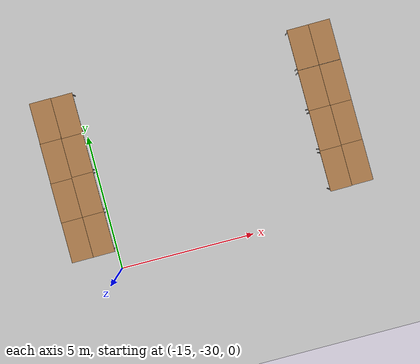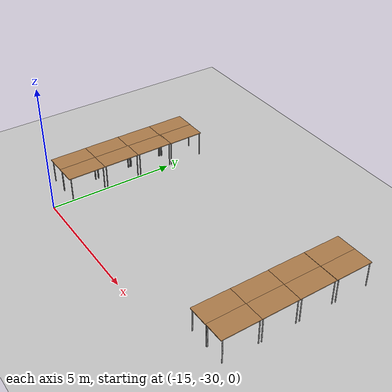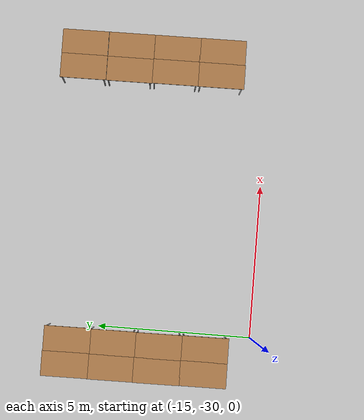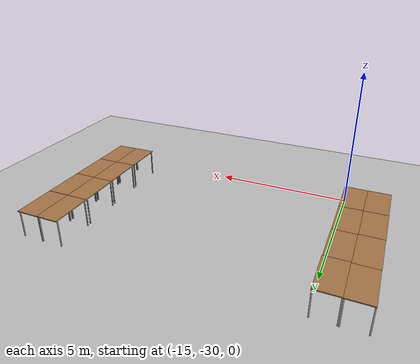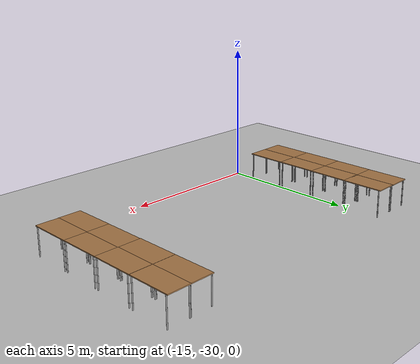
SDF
<sdf version="1.7">
 <world name="default">
  <include><uri>model://ground_plane</uri></include>
  <model name="table">
   <static>1</static>
   <link name="link">
    <collision name="surface">
     <pose>0 0 1 0 -0 0</pose>
     <geometry><box><size>1.5 0.8 0.03</size></box></geometry>
     <surface><friction><ode><mu>0.6</mu><mu2>0.6</mu2></ode></friction></surface>
    </collision>
    <visual name="visual1">
     <pose>0 0 1 0 -0 0</pose>
     <geometry><box><size>1.5 0.8 0.03</size></box></geometry>
     <material>
      <script><uri>file://media/materials/scripts/gazebo.material</uri><name>Gazebo/Wood</name></script>
     </material>
    </visual>
    <collision name="front_left_leg">
     <pose>0.68 0.38 0.5 0 -0 0</pose>
     <geometry><cylinder><radius>0.02</radius><length>1</length></cylinder></geometry>
    </collision>
    <visual name="front_left_leg">
     <pose>0.68 0.38 0.5 0 -0 0</pose>
     <geometry><cylinder><radius>0.02</radius><length>1</length></cylinder></geometry>
     <material>
      <script><uri>file://media/materials/scripts/gazebo.material</uri><name>Gazebo/Grey</name></script>
     </material>
    </visual>
    <collision name="front_right_leg">
     <pose>0.68 -0.38 0.5 0 -0 0</pose>
     <geometry><cylinder><radius>0.02</radius><length>1</length></cylinder></geometry>
    </collision>
    <visual name="front_right_leg">
     <pose>0.68 -0.38 0.5 0 -0 0</pose>
     <geometry><cylinder><radius>0.02</radius><length>1</length></cylinder></geometry>
     <material>
      <script><uri>file://media/materials/scripts/gazebo.material</uri><name>Gazebo/Grey</name></script>
     </material>
    </visual>
    <collision name="back_right_leg">
     <pose>-0.68 -0.38 0.5 0 -0 0</pose>
     <geometry><cylinder><radius>0.02</radius><length>1</length></cylinder></geometry>
    </collision>
    <visual name="back_right_leg">
     <pose>-0.68 -0.38 0.5 0 -0 0</pose>
     <geometry><cylinder><radius>0.02</radius><length>1</length></cylinder></geometry>
     <material>
      <script><uri>file://media/materials/scripts/gazebo.material</uri><name>Gazebo/Grey</name></script>
     </material>
    </visual>
    <collision name="back_left_leg">
     <pose>-0.68 0.38 0.5 0 -0 0</pose>
     <geometry><cylinder><radius>0.02</radius><length>1</length></cylinder></geometry>
    </collision>
    <visual name="back_left_leg">
     <pose>-0.68 0.38 0.5 0 -0 0</pose>
     <geometry><cylinder><radius>0.02</radius><length>1</length></cylinder></geometry>
     <material>
      <script><uri>file://media/materials/scripts/gazebo.material</uri><name>Gazebo/Grey</name></script>
     </material>
    </visual>
   </link>
   <pose>-15.4305 -24.0821 0 0 -0 1.58041</pose>
  </model>
  <model name="table_clone">
   <static>1</static>
   <link name="link">
    <collision name="surface">
     <pose>0 0 1 0 -0 0</pose>
     <geometry><box><size>1.5 0.8 0.03</size></box></geometry>
     <surface><friction><ode><mu>0.6</mu><mu2>0.6</mu2></ode></friction></surface>
    </collision>
    <visual name="visual1">
     <pose>0 0 1 0 -0 0</pose>
     <geometry><box><size>1.5 0.8 0.03</size></box></geometry>
     <material>
      <script><uri>file://media/materials/scripts/gazebo.material</uri><name>Gazebo/Wood</name></script>
     </material>
    </visual>
    <collision name="front_left_leg">
     <pose>0.68 0.38 0.5 0 -0 0</pose>
     <geometry><cylinder><radius>0.02</radius><length>1</length></cylinder></geometry>
    </collision>
    <visual name="front_left_leg">
     <pose>0.68 0.38 0.5 0 -0 0</pose>
     <geometry><cylinder><radius>0.02</radius><length>1</length></cylinder></geometry>
     <material>
      <script><uri>file://media/materials/scripts/gazebo.material</uri><name>Gazebo/Grey</name></script>
     </material>
    </visual>
    <collision name="front_right_leg">
     <pose>0.68 -0.38 0.5 0 -0 0</pose>
     <geometry><cylinder><radius>0.02</radius><length>1</length></cylinder></geometry>
    </collision>
    <visual name="front_right_leg">
     <pose>0.68 -0.38 0.5 0 -0 0</pose>
     <geometry><cylinder><radius>0.02</radius><length>1</length></cylinder></geometry>
     <material>
      <script><uri>file://media/materials/scripts/gazebo.material</uri><name>Gazebo/Grey</name></script>
     </material>
    </visual>
    <collision name="back_right_leg">
     <pose>-0.68 -0.38 0.5 0 -0 0</pose>
     <geometry><cylinder><radius>0.02</radius><length>1</length></cylinder></geometry>
    </collision>
    <visual name="back_right_leg">
     <pose>-0.68 -0.38 0.5 0 -0 0</pose>
     <geometry><cylinder><radius>0.02</radius><length>1</length></cylinder></geometry>
     <material>
      <script><uri>file://media/materials/scripts/gazebo.material</uri><name>Gazebo/Grey</name></script>
     </material>
    </visual>
    <collision name="back_left_leg">
     <pose>-0.68 0.38 0.5 0 -0 0</pose>
     <geometry><cylinder><radius>0.02</radius><length>1</length></cylinder></geometry>
    </collision>
    <visual name="back_left_leg">
     <pose>-0.68 0.38 0.5 0 -0 0</pose>
     <geometry><cylinder><radius>0.02</radius><length>1</length></cylinder></geometry>
     <material>
      <script><uri>file://media/materials/scripts/gazebo.material</uri><name>Gazebo/Grey</name></script>
     </material>
    </visual>
   </link>
   <pose>-15.4315 -25.5243 0 0 -0 1.57868</pose>
  </model>
  <model name="table_clone_clone">
   <static>1</static>
   <link name="link">
    <collision name="surface">
     <pose>0 0 1 0 -0 0</pose>
     <geometry><box><size>1.5 0.8 0.03</size></box></geometry>
     <surface><friction><ode><mu>0.6</mu><mu2>0.6</mu2></ode></friction></surface>
    </collision>
    <visual name="visual1">
     <pose>0 0 1 0 -0 0</pose>
     <geometry><box><size>1.5 0.8 0.03</size></box></geometry>
     <material>
      <script><uri>file://media/materials/scripts/gazebo.material</uri><name>Gazebo/Wood</name></script>
     </material>
    </visual>
    <collision name="front_left_leg">
     <pose>0.68 0.38 0.5 0 -0 0</pose>
     <geometry><cylinder><radius>0.02</radius><length>1</length></cylinder></geometry>
    </collision>
    <visual name="front_left_leg">
     <pose>0.68 0.38 0.5 0 -0 0</pose>
     <geometry><cylinder><radius>0.02</radius><length>1</length></cylinder></geometry>
     <material>
      <script><uri>file://media/materials/scripts/gazebo.material</uri><name>Gazebo/Grey</name></script>
     </material>
    </visual>
    <collision name="front_right_leg">
     <pose>0.68 -0.38 0.5 0 -0 0</pose>
     <geometry><cylinder><radius>0.02</radius><length>1</length></cylinder></geometry>
    </collision>
    <visual name="front_right_leg">
     <pose>0.68 -0.38 0.5 0 -0 0</pose>
     <geometry><cylinder><radius>0.02</radius><length>1</length></cylinder></geometry>
     <material>
      <script><uri>file://media/materials/scripts/gazebo.material</uri><name>Gazebo/Grey</name></script>
     </material>
    </visual>
    <collision name="back_right_leg">
     <pose>-0.68 -0.38 0.5 0 -0 0</pose>
     <geometry><cylinder><radius>0.02</radius><length>1</length></cylinder></geometry>
    </collision>
    <visual name="back_right_leg">
     <pose>-0.68 -0.38 0.5 0 -0 0</pose>
     <geometry><cylinder><radius>0.02</radius><length>1</length></cylinder></geometry>
     <material>
      <script><uri>file://media/materials/scripts/gazebo.material</uri><name>Gazebo/Grey</name></script>
     </material>
    </visual>
    <collision name="back_left_leg">
     <pose>-0.68 0.38 0.5 0 -0 0</pose>
     <geometry><cylinder><radius>0.02</radius><length>1</length></cylinder></geometry>
    </collision>
    <visual name="back_left_leg">
     <pose>-0.68 0.38 0.5 0 -0 0</pose>
     <geometry><cylinder><radius>0.02</radius><length>1</length></cylinder></geometry>
     <material>
      <script><uri>file://media/materials/scripts/gazebo.material</uri><name>Gazebo/Grey</name></script>
     </material>
    </visual>
   </link>
   <pose>-15.4282 -27.0059 0 0 -0 1.57868</pose>
  </model>
  <model name="table_clone_clone_clone">
   <static>1</static>
   <link name="link">
    <collision name="surface">
     <pose>0 0 1 0 -0 0</pose>
     <geometry><box><size>1.5 0.8 0.03</size></box></geometry>
     <surface><friction><ode><mu>0.6</mu><mu2>0.6</mu2></ode></friction></surface>
    </collision>
    <visual name="visual1">
     <pose>0 0 1 0 -0 0</pose>
     <geometry><box><size>1.5 0.8 0.03</size></box></geometry>
     <material>
      <script><uri>file://media/materials/scripts/gazebo.material</uri><name>Gazebo/Wood</name></script>
     </material>
    </visual>
    <collision name="front_left_leg">
     <pose>0.68 0.38 0.5 0 -0 0</pose>
     <geometry><cylinder><radius>0.02</radius><length>1</length></cylinder></geometry>
    </collision>
    <visual name="front_left_leg">
     <pose>0.68 0.38 0.5 0 -0 0</pose>
     <geometry><cylinder><radius>0.02</radius><length>1</length></cylinder></geometry>
     <material>
      <script><uri>file://media/materials/scripts/gazebo.material</uri><name>Gazebo/Grey</name></script>
     </material>
    </visual>
    <collision name="front_right_leg">
     <pose>0.68 -0.38 0.5 0 -0 0</pose>
     <geometry><cylinder><radius>0.02</radius><length>1</length></cylinder></geometry>
    </collision>
    <visual name="front_right_leg">
     <pose>0.68 -0.38 0.5 0 -0 0</pose>
     <geometry><cylinder><radius>0.02</radius><length>1</length></cylinder></geometry>
     <material>
      <script><uri>file://media/materials/scripts/gazebo.material</uri><name>Gazebo/Grey</name></script>
     </material>
    </visual>
    <collision name="back_right_leg">
     <pose>-0.68 -0.38 0.5 0 -0 0</pose>
     <geometry><cylinder><radius>0.02</radius><length>1</length></cylinder></geometry>
    </collision>
    <visual name="back_right_leg">
     <pose>-0.68 -0.38 0.5 0 -0 0</pose>
     <geometry><cylinder><radius>0.02</radius><length>1</length></cylinder></geometry>
     <material>
      <script><uri>file://media/materials/scripts/gazebo.material</uri><name>Gazebo/Grey</name></script>
     </material>
    </visual>
    <collision name="back_left_leg">
     <pose>-0.68 0.38 0.5 0 -0 0</pose>
     <geometry><cylinder><radius>0.02</radius><length>1</length></cylinder></geometry>
    </collision>
    <visual name="back_left_leg">
     <pose>-0.68 0.38 0.5 0 -0 0</pose>
     <geometry><cylinder><radius>0.02</radius><length>1</length></cylinder></geometry>
     <material>
      <script><uri>file://media/materials/scripts/gazebo.material</uri><name>Gazebo/Grey</name></script>
     </material>
    </visual>
   </link>
   <pose>-15.4117 -28.4971 -0 0 -0 1.57868</pose>
  </model>
  <model name="table_clone_0">
   <static>1</static>
   <link name="link">
    <collision name="surface">
     <pose>0 0 1 0 -0 0</pose>
     <geometry><box><size>1.5 0.8 0.03</size></box></geometry>
     <surface><friction><ode><mu>0.6</mu><mu2>0.6</mu2></ode></friction></surface>
    </collision>
    <visual name="visual1">
     <pose>0 0 1 0 -0 0</pose>
     <geometry><box><size>1.5 0.8 0.03</size></box></geometry>
     <material>
      <script><uri>file://media/materials/scripts/gazebo.material</uri><name>Gazebo/Wood</name></script>
     </material>
    </visual>
    <collision name="front_left_leg">
     <pose>0.68 0.38 0.5 0 -0 0</pose>
     <geometry><cylinder><radius>0.02</radius><length>1</length></cylinder></geometry>
    </collision>
    <visual name="front_left_leg">
     <pose>0.68 0.38 0.5 0 -0 0</pose>
     <geometry><cylinder><radius>0.02</radius><length>1</length></cylinder></geometry>
     <material>
      <script><uri>file://media/materials/scripts/gazebo.material</uri><name>Gazebo/Grey</name></script>
     </material>
    </visual>
    <collision name="front_right_leg">
     <pose>0.68 -0.38 0.5 0 -0 0</pose>
     <geometry><cylinder><radius>0.02</radius><length>1</length></cylinder></geometry>
    </collision>
    <visual name="front_right_leg">
     <pose>0.68 -0.38 0.5 0 -0 0</pose>
     <geometry><cylinder><radius>0.02</radius><length>1</length></cylinder></geometry>
     <material>
      <script><uri>file://media/materials/scripts/gazebo.material</uri><name>Gazebo/Grey</name></script>
     </material>
    </visual>
    <collision name="back_right_leg">
     <pose>-0.68 -0.38 0.5 0 -0 0</pose>
     <geometry><cylinder><radius>0.02</radius><length>1</length></cylinder></geometry>
    </collision>
    <visual name="back_right_leg">
     <pose>-0.68 -0.38 0.5 0 -0 0</pose>
     <geometry><cylinder><radius>0.02</radius><length>1</length></cylinder></geometry>
     <material>
      <script><uri>file://media/materials/scripts/gazebo.material</uri><name>Gazebo/Grey</name></script>
     </material>
    </visual>
    <collision name="back_left_leg">
     <pose>-0.68 0.38 0.5 0 -0 0</pose>
     <geometry><cylinder><radius>0.02</radius><length>1</length></cylinder></geometry>
    </collision>
    <visual name="back_left_leg">
     <pose>-0.68 0.38 0.5 0 -0 0</pose>
     <geometry><cylinder><radius>0.02</radius><length>1</length></cylinder></geometry>
     <material>
      <script><uri>file://media/materials/scripts/gazebo.material</uri><name>Gazebo/Grey</name></script>
     </material>
    </visual>
   </link>
   <pose>-16.2278 -24.0779 0 0 -0 1.57868</pose>
  </model>
  <model name="table_clone_0_clone">
   <static>1</static>
   <link name="link">
    <collision name="surface">
     <pose>0 0 1 0 -0 0</pose>
     <geometry><box><size>1.5 0.8 0.03</size></box></geometry>
     <surface><friction><ode><mu>0.6</mu><mu2>0.6</mu2></ode></friction></surface>
    </collision>
    <visual name="visual1">
     <pose>0 0 1 0 -0 0</pose>
     <geometry><box><size>1.5 0.8 0.03</size></box></geometry>
     <material>
      <script><uri>file://media/materials/scripts/gazebo.material</uri><name>Gazebo/Wood</name></script>
     </material>
    </visual>
    <collision name="front_left_leg">
     <pose>0.68 0.38 0.5 0 -0 0</pose>
     <geometry><cylinder><radius>0.02</radius><length>1</length></cylinder></geometry>
    </collision>
    <visual name="front_left_leg">
     <pose>0.68 0.38 0.5 0 -0 0</pose>
     <geometry><cylinder><radius>0.02</radius><length>1</length></cylinder></geometry>
     <material>
      <script><uri>file://media/materials/scripts/gazebo.material</uri><name>Gazebo/Grey</name></script>
     </material>
    </visual>
    <collision name="front_right_leg">
     <pose>0.68 -0.38 0.5 0 -0 0</pose>
     <geometry><cylinder><radius>0.02</radius><length>1</length></cylinder></geometry>
    </collision>
    <visual name="front_right_leg">
     <pose>0.68 -0.38 0.5 0 -0 0</pose>
     <geometry><cylinder><radius>0.02</radius><length>1</length></cylinder></geometry>
     <material>
      <script><uri>file://media/materials/scripts/gazebo.material</uri><name>Gazebo/Grey</name></script>
     </material>
    </visual>
    <collision name="back_right_leg">
     <pose>-0.68 -0.38 0.5 0 -0 0</pose>
     <geometry><cylinder><radius>0.02</radius><length>1</length></cylinder></geometry>
    </collision>
    <visual name="back_right_leg">
     <pose>-0.68 -0.38 0.5 0 -0 0</pose>
     <geometry><cylinder><radius>0.02</radius><length>1</length></cylinder></geometry>
     <material>
      <script><uri>file://media/materials/scripts/gazebo.material</uri><name>Gazebo/Grey</name></script>
     </material>
    </visual>
    <collision name="back_left_leg">
     <pose>-0.68 0.38 0.5 0 -0 0</pose>
     <geometry><cylinder><radius>0.02</radius><length>1</length></cylinder></geometry>
    </collision>
    <visual name="back_left_leg">
     <pose>-0.68 0.38 0.5 0 -0 0</pose>
     <geometry><cylinder><radius>0.02</radius><length>1</length></cylinder></geometry>
     <material>
      <script><uri>file://media/materials/scripts/gazebo.material</uri><name>Gazebo/Grey</name></script>
     </material>
    </visual>
   </link>
   <pose>-16.2242 -25.5579 0 0 -0 1.57868</pose>
  </model>
  <model name="table_clone_0_clone_clone">
   <static>1</static>
   <link name="link">
    <collision name="surface">
     <pose>0 0 1 0 -0 0</pose>
     <geometry><box><size>1.5 0.8 0.03</size></box></geometry>
     <surface><friction><ode><mu>0.6</mu><mu2>0.6</mu2></ode></friction></surface>
    </collision>
    <visual name="visual1">
     <pose>0 0 1 0 -0 0</pose>
     <geometry><box><size>1.5 0.8 0.03</size></box></geometry>
     <material>
      <script><uri>file://media/materials/scripts/gazebo.material</uri><name>Gazebo/Wood</name></script>
     </material>
    </visual>
    <collision name="front_left_leg">
     <pose>0.68 0.38 0.5 0 -0 0</pose>
     <geometry><cylinder><radius>0.02</radius><length>1</length></cylinder></geometry>
    </collision>
    <visual name="front_left_leg">
     <pose>0.68 0.38 0.5 0 -0 0</pose>
     <geometry><cylinder><radius>0.02</radius><length>1</length></cylinder></geometry>
     <material>
      <script><uri>file://media/materials/scripts/gazebo.material</uri><name>Gazebo/Grey</name></script>
     </material>
    </visual>
    <collision name="front_right_leg">
     <pose>0.68 -0.38 0.5 0 -0 0</pose>
     <geometry><cylinder><radius>0.02</radius><length>1</length></cylinder></geometry>
    </collision>
    <visual name="front_right_leg">
     <pose>0.68 -0.38 0.5 0 -0 0</pose>
     <geometry><cylinder><radius>0.02</radius><length>1</length></cylinder></geometry>
     <material>
      <script><uri>file://media/materials/scripts/gazebo.material</uri><name>Gazebo/Grey</name></script>
     </material>
    </visual>
    <collision name="back_right_leg">
     <pose>-0.68 -0.38 0.5 0 -0 0</pose>
     <geometry><cylinder><radius>0.02</radius><length>1</length></cylinder></geometry>
    </collision>
    <visual name="back_right_leg">
     <pose>-0.68 -0.38 0.5 0 -0 0</pose>
     <geometry><cylinder><radius>0.02</radius><length>1</length></cylinder></geometry>
     <material>
      <script><uri>file://media/materials/scripts/gazebo.material</uri><name>Gazebo/Grey</name></script>
     </material>
    </visual>
    <collision name="back_left_leg">
     <pose>-0.68 0.38 0.5 0 -0 0</pose>
     <geometry><cylinder><radius>0.02</radius><length>1</length></cylinder></geometry>
    </collision>
    <visual name="back_left_leg">
     <pose>-0.68 0.38 0.5 0 -0 0</pose>
     <geometry><cylinder><radius>0.02</radius><length>1</length></cylinder></geometry>
     <material>
      <script><uri>file://media/materials/scripts/gazebo.material</uri><name>Gazebo/Grey</name></script>
     </material>
    </visual>
   </link>
   <pose>-16.2185 -27.0138 0 0 -0 1.57868</pose>
  </model>
  <model name="table_clone_0_clone_clone_clone">
   <static>1</static>
   <link name="link">
    <collision name="surface">
     <pose>0 0 1 0 -0 0</pose>
     <geometry><box><size>1.5 0.8 0.03</size></box></geometry>
     <surface><friction><ode><mu>0.6</mu><mu2>0.6</mu2></ode></friction></surface>
    </collision>
    <visual name="visual1">
     <pose>0 0 1 0 -0 0</pose>
     <geometry><box><size>1.5 0.8 0.03</size></box></geometry>
     <material>
      <script><uri>file://media/materials/scripts/gazebo.material</uri><name>Gazebo/Wood</name></script>
     </material>
    </visual>
    <collision name="front_left_leg">
     <pose>0.68 0.38 0.5 0 -0 0</pose>
     <geometry><cylinder><radius>0.02</radius><length>1</length></cylinder></geometry>
    </collision>
    <visual name="front_left_leg">
     <pose>0.68 0.38 0.5 0 -0 0</pose>
     <geometry><cylinder><radius>0.02</radius><length>1</length></cylinder></geometry>
     <material>
      <script><uri>file://media/materials/scripts/gazebo.material</uri><name>Gazebo/Grey</name></script>
     </material>
    </visual>
    <collision name="front_right_leg">
     <pose>0.68 -0.38 0.5 0 -0 0</pose>
     <geometry><cylinder><radius>0.02</radius><length>1</length></cylinder></geometry>
    </collision>
    <visual name="front_right_leg">
     <pose>0.68 -0.38 0.5 0 -0 0</pose>
     <geometry><cylinder><radius>0.02</radius><length>1</length></cylinder></geometry>
     <material>
      <script><uri>file://media/materials/scripts/gazebo.material</uri><name>Gazebo/Grey</name></script>
     </material>
    </visual>
    <collision name="back_right_leg">
     <pose>-0.68 -0.38 0.5 0 -0 0</pose>
     <geometry><cylinder><radius>0.02</radius><length>1</length></cylinder></geometry>
    </collision>
    <visual name="back_right_leg">
     <pose>-0.68 -0.38 0.5 0 -0 0</pose>
     <geometry><cylinder><radius>0.02</radius><length>1</length></cylinder></geometry>
     <material>
      <script><uri>file://media/materials/scripts/gazebo.material</uri><name>Gazebo/Grey</name></script>
     </material>
    </visual>
    <collision name="back_left_leg">
     <pose>-0.68 0.38 0.5 0 -0 0</pose>
     <geometry><cylinder><radius>0.02</radius><length>1</length></cylinder></geometry>
    </collision>
    <visual name="back_left_leg">
     <pose>-0.68 0.38 0.5 0 -0 0</pose>
     <geometry><cylinder><radius>0.02</radius><length>1</length></cylinder></geometry>
     <material>
      <script><uri>file://media/materials/scripts/gazebo.material</uri><name>Gazebo/Grey</name></script>
     </material>
    </visual>
   </link>
   <pose>-16.2008 -28.5018 0 0 -0 1.57868</pose>
  </model>
  <model name="table_clone_0_clone_clone_clone_clone">
   <static>1</static>
   <link name="link">
    <collision name="surface">
     <pose>0 0 1 0 -0 0</pose>
     <geometry><box><size>1.5 0.8 0.03</size></box></geometry>
     <surface><friction><ode><mu>0.6</mu><mu2>0.6</mu2></ode></friction></surface>
    </collision>
    <visual name="visual1">
     <pose>0 0 1 0 -0 0</pose>
     <geometry><box><size>1.5 0.8 0.03</size></box></geometry>
     <material>
      <script><uri>file://media/materials/scripts/gazebo.material</uri><name>Gazebo/Wood</name></script>
     </material>
    </visual>
    <collision name="front_left_leg">
     <pose>0.68 0.38 0.5 0 -0 0</pose>
     <geometry><cylinder><radius>0.02</radius><length>1</length></cylinder></geometry>
    </collision>
    <visual name="front_left_leg">
     <pose>0.68 0.38 0.5 0 -0 0</pose>
     <geometry><cylinder><radius>0.02</radius><length>1</length></cylinder></geometry>
     <material>
      <script><uri>file://media/materials/scripts/gazebo.material</uri><name>Gazebo/Grey</name></script>
     </material>
    </visual>
    <collision name="front_right_leg">
     <pose>0.68 -0.38 0.5 0 -0 0</pose>
     <geometry><cylinder><radius>0.02</radius><length>1</length></cylinder></geometry>
    </collision>
    <visual name="front_right_leg">
     <pose>0.68 -0.38 0.5 0 -0 0</pose>
     <geometry><cylinder><radius>0.02</radius><length>1</length></cylinder></geometry>
     <material>
      <script><uri>file://media/materials/scripts/gazebo.material</uri><name>Gazebo/Grey</name></script>
     </material>
    </visual>
    <collision name="back_right_leg">
     <pose>-0.68 -0.38 0.5 0 -0 0</pose>
     <geometry><cylinder><radius>0.02</radius><length>1</length></cylinder></geometry>
    </collision>
    <visual name="back_right_leg">
     <pose>-0.68 -0.38 0.5 0 -0 0</pose>
     <geometry><cylinder><radius>0.02</radius><length>1</length></cylinder></geometry>
     <material>
      <script><uri>file://media/materials/scripts/gazebo.material</uri><name>Gazebo/Grey</name></script>
     </material>
    </visual>
    <collision name="back_left_leg">
     <pose>-0.68 0.38 0.5 0 -0 0</pose>
     <geometry><cylinder><radius>0.02</radius><length>1</length></cylinder></geometry>
    </collision>
    <visual name="back_left_leg">
     <pose>-0.68 0.38 0.5 0 -0 0</pose>
     <geometry><cylinder><radius>0.02</radius><length>1</length></cylinder></geometry>
     <material>
      <script><uri>file://media/materials/scripts/gazebo.material</uri><name>Gazebo/Grey</name></script>
     </material>
    </visual>
   </link>
   <pose>-6.56174 -28.3837 0 0 -0 1.57868</pose>
  </model>
  <model name="table_clone_0_clone_clone_clone_clone_0">
   <static>1</static>
   <link name="link">
    <collision name="surface">
     <pose>0 0 1 0 -0 0</pose>
     <geometry><box><size>1.5 0.8 0.03</size></box></geometry>
     <surface><friction><ode><mu>0.6</mu><mu2>0.6</mu2></ode></friction></surface>
    </collision>
    <visual name="visual1">
     <pose>0 0 1 0 -0 0</pose>
     <geometry><box><size>1.5 0.8 0.03</size></box></geometry>
     <material>
      <script><uri>file://media/materials/scripts/gazebo.material</uri><name>Gazebo/Wood</name></script>
     </material>
    </visual>
    <collision name="front_left_leg">
     <pose>0.68 0.38 0.5 0 -0 0</pose>
     <geometry><cylinder><radius>0.02</radius><length>1</length></cylinder></geometry>
    </collision>
    <visual name="front_left_leg">
     <pose>0.68 0.38 0.5 0 -0 0</pose>
     <geometry><cylinder><radius>0.02</radius><length>1</length></cylinder></geometry>
     <material>
      <script><uri>file://media/materials/scripts/gazebo.material</uri><name>Gazebo/Grey</name></script>
     </material>
    </visual>
    <collision name="front_right_leg">
     <pose>0.68 -0.38 0.5 0 -0 0</pose>
     <geometry><cylinder><radius>0.02</radius><length>1</length></cylinder></geometry>
    </collision>
    <visual name="front_right_leg">
     <pose>0.68 -0.38 0.5 0 -0 0</pose>
     <geometry><cylinder><radius>0.02</radius><length>1</length></cylinder></geometry>
     <material>
      <script><uri>file://media/materials/scripts/gazebo.material</uri><name>Gazebo/Grey</name></script>
     </material>
    </visual>
    <collision name="back_right_leg">
     <pose>-0.68 -0.38 0.5 0 -0 0</pose>
     <geometry><cylinder><radius>0.02</radius><length>1</length></cylinder></geometry>
    </collision>
    <visual name="back_right_leg">
     <pose>-0.68 -0.38 0.5 0 -0 0</pose>
     <geometry><cylinder><radius>0.02</radius><length>1</length></cylinder></geometry>
     <material>
      <script><uri>file://media/materials/scripts/gazebo.material</uri><name>Gazebo/Grey</name></script>
     </material>
    </visual>
    <collision name="back_left_leg">
     <pose>-0.68 0.38 0.5 0 -0 0</pose>
     <geometry><cylinder><radius>0.02</radius><length>1</length></cylinder></geometry>
    </collision>
    <visual name="back_left_leg">
     <pose>-0.68 0.38 0.5 0 -0 0</pose>
     <geometry><cylinder><radius>0.02</radius><length>1</length></cylinder></geometry>
     <material>
      <script><uri>file://media/materials/scripts/gazebo.material</uri><name>Gazebo/Grey</name></script>
     </material>
    </visual>
   </link>
   <pose>-6.57048 -26.8852 0 0 -0 1.57868</pose>
  </model>
  <model name="table_clone_0_clone_clone_clone_clone_1">
   <static>1</static>
   <link name="link">
    <collision name="surface">
     <pose>0 0 1 0 -0 0</pose>
     <geometry><box><size>1.5 0.8 0.03</size></box></geometry>
     <surface><friction><ode><mu>0.6</mu><mu2>0.6</mu2></ode></friction></surface>
    </collision>
    <visual name="visual1">
     <pose>0 0 1 0 -0 0</pose>
     <geometry><box><size>1.5 0.8 0.03</size></box></geometry>
     <material>
      <script><uri>file://media/materials/scripts/gazebo.material</uri><name>Gazebo/Wood</name></script>
     </material>
    </visual>
    <collision name="front_left_leg">
     <pose>0.68 0.38 0.5 0 -0 0</pose>
     <geometry><cylinder><radius>0.02</radius><length>1</length></cylinder></geometry>
    </collision>
    <visual name="front_left_leg">
     <pose>0.68 0.38 0.5 0 -0 0</pose>
     <geometry><cylinder><radius>0.02</radius><length>1</length></cylinder></geometry>
     <material>
      <script><uri>file://media/materials/scripts/gazebo.material</uri><name>Gazebo/Grey</name></script>
     </material>
    </visual>
    <collision name="front_right_leg">
     <pose>0.68 -0.38 0.5 0 -0 0</pose>
     <geometry><cylinder><radius>0.02</radius><length>1</length></cylinder></geometry>
    </collision>
    <visual name="front_right_leg">
     <pose>0.68 -0.38 0.5 0 -0 0</pose>
     <geometry><cylinder><radius>0.02</radius><length>1</length></cylinder></geometry>
     <material>
      <script><uri>file://media/materials/scripts/gazebo.material</uri><name>Gazebo/Grey</name></script>
     </material>
    </visual>
    <collision name="back_right_leg">
     <pose>-0.68 -0.38 0.5 0 -0 0</pose>
     <geometry><cylinder><radius>0.02</radius><length>1</length></cylinder></geometry>
    </collision>
    <visual name="back_right_leg">
     <pose>-0.68 -0.38 0.5 0 -0 0</pose>
     <geometry><cylinder><radius>0.02</radius><length>1</length></cylinder></geometry>
     <material>
      <script><uri>file://media/materials/scripts/gazebo.material</uri><name>Gazebo/Grey</name></script>
     </material>
    </visual>
    <collision name="back_left_leg">
     <pose>-0.68 0.38 0.5 0 -0 0</pose>
     <geometry><cylinder><radius>0.02</radius><length>1</length></cylinder></geometry>
    </collision>
    <visual name="back_left_leg">
     <pose>-0.68 0.38 0.5 0 -0 0</pose>
     <geometry><cylinder><radius>0.02</radius><length>1</length></cylinder></geometry>
     <material>
      <script><uri>file://media/materials/scripts/gazebo.material</uri><name>Gazebo/Grey</name></script>
     </material>
    </visual>
   </link>
   <pose>-6.59115 -25.3899 0 0 -0 1.57868</pose>
  </model>
  <model name="table_clone_0_clone_clone_clone_clone_2">
   <static>1</static>
   <link name="link">
    <collision name="surface">
     <pose>0 0 1 0 -0 0</pose>
     <geometry><box><size>1.5 0.8 0.03</size></box></geometry>
     <surface><friction><ode><mu>0.6</mu><mu2>0.6</mu2></ode></friction></surface>
    </collision>
    <visual name="visual1">
     <pose>0 0 1 0 -0 0</pose>
     <geometry><box><size>1.5 0.8 0.03</size></box></geometry>
     <material>
      <script><uri>file://media/materials/scripts/gazebo.material</uri><name>Gazebo/Wood</name></script>
     </material>
    </visual>
    <collision name="front_left_leg">
     <pose>0.68 0.38 0.5 0 -0 0</pose>
     <geometry><cylinder><radius>0.02</radius><length>1</length></cylinder></geometry>
    </collision>
    <visual name="front_left_leg">
     <pose>0.68 0.38 0.5 0 -0 0</pose>
     <geometry><cylinder><radius>0.02</radius><length>1</length></cylinder></geometry>
     <material>
      <script><uri>file://media/materials/scripts/gazebo.material</uri><name>Gazebo/Grey</name></script>
     </material>
    </visual>
    <collision name="front_right_leg">
     <pose>0.68 -0.38 0.5 0 -0 0</pose>
     <geometry><cylinder><radius>0.02</radius><length>1</length></cylinder></geometry>
    </collision>
    <visual name="front_right_leg">
     <pose>0.68 -0.38 0.5 0 -0 0</pose>
     <geometry><cylinder><radius>0.02</radius><length>1</length></cylinder></geometry>
     <material>
      <script><uri>file://media/materials/scripts/gazebo.material</uri><name>Gazebo/Grey</name></script>
     </material>
    </visual>
    <collision name="back_right_leg">
     <pose>-0.68 -0.38 0.5 0 -0 0</pose>
     <geometry><cylinder><radius>0.02</radius><length>1</length></cylinder></geometry>
    </collision>
    <visual name="back_right_leg">
     <pose>-0.68 -0.38 0.5 0 -0 0</pose>
     <geometry><cylinder><radius>0.02</radius><length>1</length></cylinder></geometry>
     <material>
      <script><uri>file://media/materials/scripts/gazebo.material</uri><name>Gazebo/Grey</name></script>
     </material>
    </visual>
    <collision name="back_left_leg">
     <pose>-0.68 0.38 0.5 0 -0 0</pose>
     <geometry><cylinder><radius>0.02</radius><length>1</length></cylinder></geometry>
    </collision>
    <visual name="back_left_leg">
     <pose>-0.68 0.38 0.5 0 -0 0</pose>
     <geometry><cylinder><radius>0.02</radius><length>1</length></cylinder></geometry>
     <material>
      <script><uri>file://media/materials/scripts/gazebo.material</uri><name>Gazebo/Grey</name></script>
     </material>
    </visual>
   </link>
   <pose>-6.60101 -23.8835 0 0 -0 1.57868</pose>
  </model>
  <model name="table_clone_0_clone_clone_clone_clone_3">
   <static>1</static>
   <link name="link">
    <collision name="surface">
     <pose>0 0 1 0 -0 0</pose>
     <geometry><box><size>1.5 0.8 0.03</size></box></geometry>
     <surface><friction><ode><mu>0.6</mu><mu2>0.6</mu2></ode></friction></surface>
    </collision>
    <visual name="visual1">
     <pose>0 0 1 0 -0 0</pose>
     <geometry><box><size>1.5 0.8 0.03</size></box></geometry>
     <material>
      <script><uri>file://media/materials/scripts/gazebo.material</uri><name>Gazebo/Wood</name></script>
     </material>
    </visual>
    <collision name="front_left_leg">
     <pose>0.68 0.38 0.5 0 -0 0</pose>
     <geometry><cylinder><radius>0.02</radius><length>1</length></cylinder></geometry>
    </collision>
    <visual name="front_left_leg">
     <pose>0.68 0.38 0.5 0 -0 0</pose>
     <geometry><cylinder><radius>0.02</radius><length>1</length></cylinder></geometry>
     <material>
      <script><uri>file://media/materials/scripts/gazebo.material</uri><name>Gazebo/Grey</name></script>
     </material>
    </visual>
    <collision name="front_right_leg">
     <pose>0.68 -0.38 0.5 0 -0 0</pose>
     <geometry><cylinder><radius>0.02</radius><length>1</length></cylinder></geometry>
    </collision>
    <visual name="front_right_leg">
     <pose>0.68 -0.38 0.5 0 -0 0</pose>
     <geometry><cylinder><radius>0.02</radius><length>1</length></cylinder></geometry>
     <material>
      <script><uri>file://media/materials/scripts/gazebo.material</uri><name>Gazebo/Grey</name></script>
     </material>
    </visual>
    <collision name="back_right_leg">
     <pose>-0.68 -0.38 0.5 0 -0 0</pose>
     <geometry><cylinder><radius>0.02</radius><length>1</length></cylinder></geometry>
    </collision>
    <visual name="back_right_leg">
     <pose>-0.68 -0.38 0.5 0 -0 0</pose>
     <geometry><cylinder><radius>0.02</radius><length>1</length></cylinder></geometry>
     <material>
      <script><uri>file://media/materials/scripts/gazebo.material</uri><name>Gazebo/Grey</name></script>
     </material>
    </visual>
    <collision name="back_left_leg">
     <pose>-0.68 0.38 0.5 0 -0 0</pose>
     <geometry><cylinder><radius>0.02</radius><length>1</length></cylinder></geometry>
    </collision>
    <visual name="back_left_leg">
     <pose>-0.68 0.38 0.5 0 -0 0</pose>
     <geometry><cylinder><radius>0.02</radius><length>1</length></cylinder></geometry>
     <material>
      <script><uri>file://media/materials/scripts/gazebo.material</uri><name>Gazebo/Grey</name></script>
     </material>
    </visual>
   </link>
   <pose>-5.76923 -28.3653 0 0 -0 1.57868</pose>
  </model>
  <model name="table_clone_0_clone_clone_clone_clone_4">
   <static>1</static>
   <link name="link">
    <collision name="surface">
     <pose>0 0 1 0 -0 0</pose>
     <geometry><box><size>1.5 0.8 0.03</size></box></geometry>
     <surface><friction><ode><mu>0.6</mu><mu2>0.6</mu2></ode></friction></surface>
    </collision>
    <visual name="visual1">
     <pose>0 0 1 0 -0 0</pose>
     <geometry><box><size>1.5 0.8 0.03</size></box></geometry>
     <material>
      <script><uri>file://media/materials/scripts/gazebo.material</uri><name>Gazebo/Wood</name></script>
     </material>
    </visual>
    <collision name="front_left_leg">
     <pose>0.68 0.38 0.5 0 -0 0</pose>
     <geometry><cylinder><radius>0.02</radius><length>1</length></cylinder></geometry>
    </collision>
    <visual name="front_left_leg">
     <pose>0.68 0.38 0.5 0 -0 0</pose>
     <geometry><cylinder><radius>0.02</radius><length>1</length></cylinder></geometry>
     <material>
      <script><uri>file://media/materials/scripts/gazebo.material</uri><name>Gazebo/Grey</name></script>
     </material>
    </visual>
    <collision name="front_right_leg">
     <pose>0.68 -0.38 0.5 0 -0 0</pose>
     <geometry><cylinder><radius>0.02</radius><length>1</length></cylinder></geometry>
    </collision>
    <visual name="front_right_leg">
     <pose>0.68 -0.38 0.5 0 -0 0</pose>
     <geometry><cylinder><radius>0.02</radius><length>1</length></cylinder></geometry>
     <material>
      <script><uri>file://media/materials/scripts/gazebo.material</uri><name>Gazebo/Grey</name></script>
     </material>
    </visual>
    <collision name="back_right_leg">
     <pose>-0.68 -0.38 0.5 0 -0 0</pose>
     <geometry><cylinder><radius>0.02</radius><length>1</length></cylinder></geometry>
    </collision>
    <visual name="back_right_leg">
     <pose>-0.68 -0.38 0.5 0 -0 0</pose>
     <geometry><cylinder><radius>0.02</radius><length>1</length></cylinder></geometry>
     <material>
      <script><uri>file://media/materials/scripts/gazebo.material</uri><name>Gazebo/Grey</name></script>
     </material>
    </visual>
    <collision name="back_left_leg">
     <pose>-0.68 0.38 0.5 0 -0 0</pose>
     <geometry><cylinder><radius>0.02</radius><length>1</length></cylinder></geometry>
    </collision>
    <visual name="back_left_leg">
     <pose>-0.68 0.38 0.5 0 -0 0</pose>
     <geometry><cylinder><radius>0.02</radius><length>1</length></cylinder></geometry>
     <material>
      <script><uri>file://media/materials/scripts/gazebo.material</uri><name>Gazebo/Grey</name></script>
     </material>
    </visual>
   </link>
   <pose>-5.78415 -26.8856 0 0 -0 1.57868</pose>
  </model>
  <model name="table_clone_0_clone_clone_clone_clone_5">
   <static>1</static>
   <link name="link">
    <collision name="surface">
     <pose>0 0 1 0 -0 0</pose>
     <geometry><box><size>1.5 0.8 0.03</size></box></geometry>
     <surface><friction><ode><mu>0.6</mu><mu2>0.6</mu2></ode></friction></surface>
    </collision>
    <visual name="visual1">
     <pose>0 0 1 0 -0 0</pose>
     <geometry><box><size>1.5 0.8 0.03</size></box></geometry>
     <material>
      <script><uri>file://media/materials/scripts/gazebo.material</uri><name>Gazebo/Wood</name></script>
     </material>
    </visual>
    <collision name="front_left_leg">
     <pose>0.68 0.38 0.5 0 -0 0</pose>
     <geometry><cylinder><radius>0.02</radius><length>1</length></cylinder></geometry>
    </collision>
    <visual name="front_left_leg">
     <pose>0.68 0.38 0.5 0 -0 0</pose>
     <geometry><cylinder><radius>0.02</radius><length>1</length></cylinder></geometry>
     <material>
      <script><uri>file://media/materials/scripts/gazebo.material</uri><name>Gazebo/Grey</name></script>
     </material>
    </visual>
    <collision name="front_right_leg">
     <pose>0.68 -0.38 0.5 0 -0 0</pose>
     <geometry><cylinder><radius>0.02</radius><length>1</length></cylinder></geometry>
    </collision>
    <visual name="front_right_leg">
     <pose>0.68 -0.38 0.5 0 -0 0</pose>
     <geometry><cylinder><radius>0.02</radius><length>1</length></cylinder></geometry>
     <material>
      <script><uri>file://media/materials/scripts/gazebo.material</uri><name>Gazebo/Grey</name></script>
     </material>
    </visual>
    <collision name="back_right_leg">
     <pose>-0.68 -0.38 0.5 0 -0 0</pose>
     <geometry><cylinder><radius>0.02</radius><length>1</length></cylinder></geometry>
    </collision>
    <visual name="back_right_leg">
     <pose>-0.68 -0.38 0.5 0 -0 0</pose>
     <geometry><cylinder><radius>0.02</radius><length>1</length></cylinder></geometry>
     <material>
      <script><uri>file://media/materials/scripts/gazebo.material</uri><name>Gazebo/Grey</name></script>
     </material>
    </visual>
    <collision name="back_left_leg">
     <pose>-0.68 0.38 0.5 0 -0 0</pose>
     <geometry><cylinder><radius>0.02</radius><length>1</length></cylinder></geometry>
    </collision>
    <visual name="back_left_leg">
     <pose>-0.68 0.38 0.5 0 -0 0</pose>
     <geometry><cylinder><radius>0.02</radius><length>1</length></cylinder></geometry>
     <material>
      <script><uri>file://media/materials/scripts/gazebo.material</uri><name>Gazebo/Grey</name></script>
     </material>
    </visual>
   </link>
   <pose>-5.7966 -25.385 0 0 -0 1.57868</pose>
  </model>
  <model name="table_clone_0_clone_clone_clone_clone_6">
   <static>1</static>
   <link name="link">
    <collision name="surface">
     <pose>0 0 1 0 -0 0</pose>
     <geometry><box><size>1.5 0.8 0.03</size></box></geometry>
     <surface><friction><ode><mu>0.6</mu><mu2>0.6</mu2></ode></friction></surface>
    </collision>
    <visual name="visual1">
     <pose>0 0 1 0 -0 0</pose>
     <geometry><box><size>1.5 0.8 0.03</size></box></geometry>
     <material>
      <script><uri>file://media/materials/scripts/gazebo.material</uri><name>Gazebo/Wood</name></script>
     </material>
    </visual>
    <collision name="front_left_leg">
     <pose>0.68 0.38 0.5 0 -0 0</pose>
     <geometry><cylinder><radius>0.02</radius><length>1</length></cylinder></geometry>
    </collision>
    <visual name="front_left_leg">
     <pose>0.68 0.38 0.5 0 -0 0</pose>
     <geometry><cylinder><radius>0.02</radius><length>1</length></cylinder></geometry>
     <material>
      <script><uri>file://media/materials/scripts/gazebo.material</uri><name>Gazebo/Grey</name></script>
     </material>
    </visual>
    <collision name="front_right_leg">
     <pose>0.68 -0.38 0.5 0 -0 0</pose>
     <geometry><cylinder><radius>0.02</radius><length>1</length></cylinder></geometry>
    </collision>
    <visual name="front_right_leg">
     <pose>0.68 -0.38 0.5 0 -0 0</pose>
     <geometry><cylinder><radius>0.02</radius><length>1</length></cylinder></geometry>
     <material>
      <script><uri>file://media/materials/scripts/gazebo.material</uri><name>Gazebo/Grey</name></script>
     </material>
    </visual>
    <collision name="back_right_leg">
     <pose>-0.68 -0.38 0.5 0 -0 0</pose>
     <geometry><cylinder><radius>0.02</radius><length>1</length></cylinder></geometry>
    </collision>
    <visual name="back_right_leg">
     <pose>-0.68 -0.38 0.5 0 -0 0</pose>
     <geometry><cylinder><radius>0.02</radius><length>1</length></cylinder></geometry>
     <material>
      <script><uri>file://media/materials/scripts/gazebo.material</uri><name>Gazebo/Grey</name></script>
     </material>
    </visual>
    <collision name="back_left_leg">
     <pose>-0.68 0.38 0.5 0 -0 0</pose>
     <geometry><cylinder><radius>0.02</radius><length>1</length></cylinder></geometry>
    </collision>
    <visual name="back_left_leg">
     <pose>-0.68 0.38 0.5 0 -0 0</pose>
     <geometry><cylinder><radius>0.02</radius><length>1</length></cylinder></geometry>
     <material>
      <script><uri>file://media/materials/scripts/gazebo.material</uri><name>Gazebo/Grey</name></script>
     </material>
    </visual>
   </link>
   <pose>-5.80923 -23.8752 0 0 -0 1.57868</pose>
  </model>
 </world>
</sdf>
